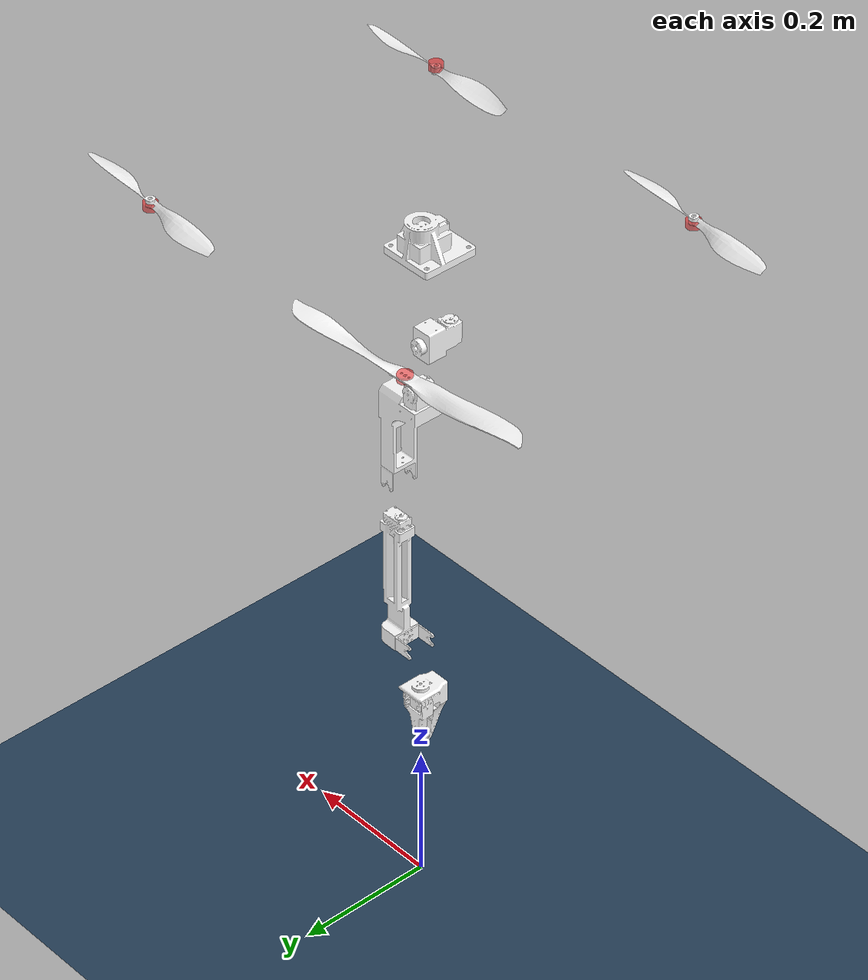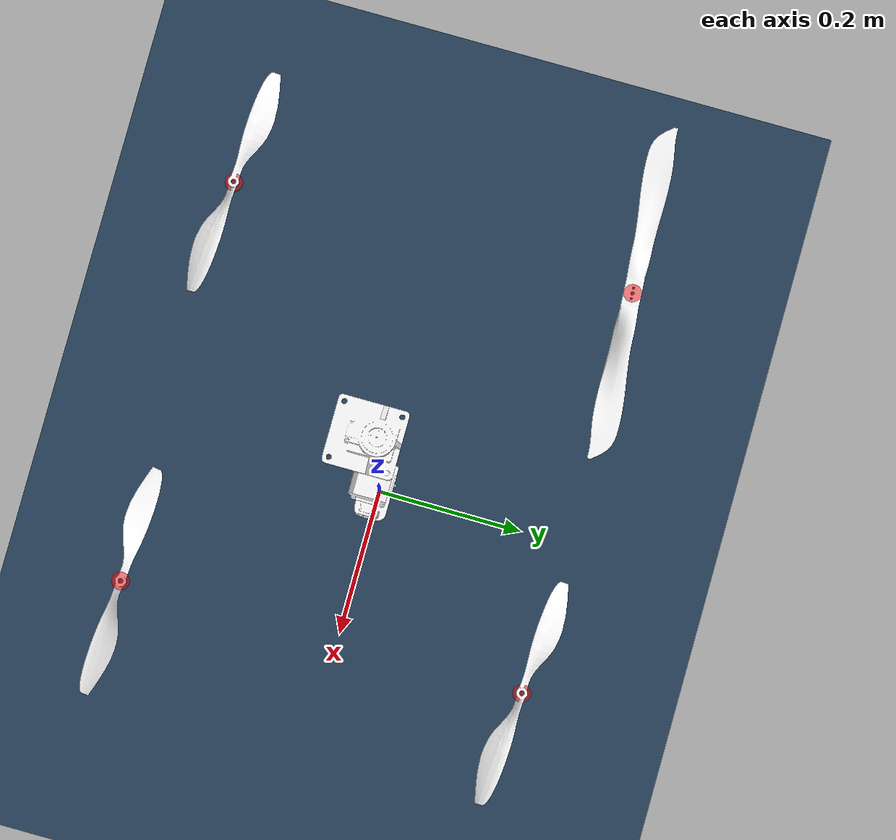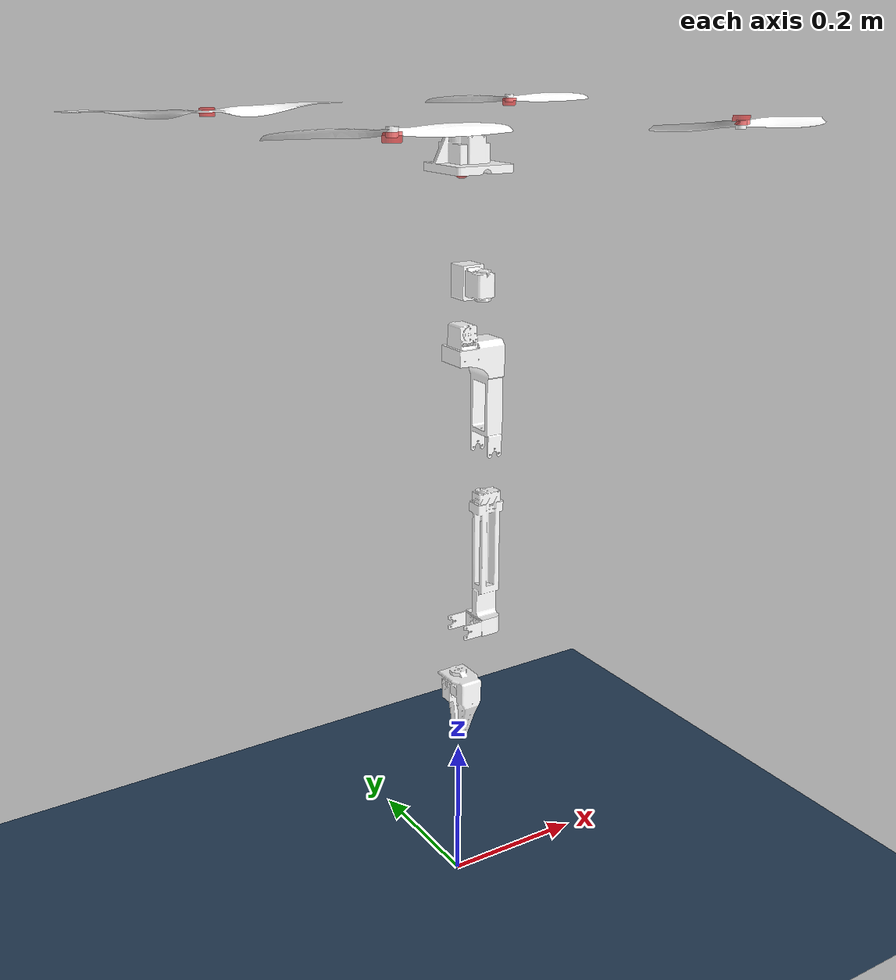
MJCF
<mujoco model="x650_arm_v2">
    <compiler angle="radian" meshdir="meshes/" />
    <option timestep="0.005" integrator="implicit" density="1.225" viscosity="1.8e-5"/>
    <size njmax="500" nconmax="100" />
    <asset>
        <texture name="grid" type="2d" builtin="checker" width="512" height="512" rgb1=".1 .2 .3" rgb2=".2 .3 .4"/>
        <material name="grid" texture="grid" texrepeat="1 1" texuniform="true" reflectance="0.2" specular="1.0" shininess="0.5"/>
        <mesh name="base_link" file="base_link.STL" />
        <mesh name="rotor_1" file="rotor_1.STL" />
        <mesh name="rotor_2" file="rotor_2.STL" />
        <mesh name="rotor_3" file="rotor_3.STL" />
        <mesh name="rotor_4" file="rotor_4.STL" />
        <mesh name="link_1" file="link_1.STL" />
        <mesh name="link_2" file="link_2.STL" />
        <mesh name="link_3" file="link_3.STL" />
        <mesh name="link_4" file="link_4.STL" />
        <mesh name="link_5" file="link_5.STL" />
    </asset>
    <worldbody>
        <geom name="floor" type="plane" pos="0 0 0" size="0 0 0.1" contype="1" conaffinity="1" material="grid"/>
        <light directional="true" diffuse=".8 .8 .8" specular=".5 .5 .5" pos="0 0 5" dir="0 0 -1" castshadow="true"/>
        <body name="base_link" pos="0 0 1">
            <inertial pos="0.012342 0.00046104 -0.055319" quat="0.458048 0.467075 -0.531593 0.537998" mass="0.88997" diaginertia="0.028069 0.0273973 0.0265968" />
            <joint name="floating_base_joint" type="free" />
            <geom type="mesh" contype="1" conaffinity="1" group="1" rgba="1 1 1 1" mesh="base_link" />
            <site name="base_link_origin" type="sphere" size="0.01" rgba="1 0 0 0.5" pos="0 0 0"/>
            <body name="rotor_1" pos="0.22991 -0.22991 0.0635">
                <inertial pos="0 0 0.001" quat="0 0.707107 0 0.707107" mass="0.0011466" diaginertia="1.3e-07 9e-08 4e-08" />
                <joint name="rotor_joint_1" pos="0 0 0" axis="0 0 1" />
                <geom type="mesh" contype="1" conaffinity="1" group="1" rgba="1 1 1 1" mesh="rotor_1" />
                <site name="rotor_joint_thrust1" type="cylinder" size="0.01 0.005" pos="0 0 0" rgba="1 0 0 0.5"/>
            </body>
            <body name="rotor_2" pos="0.22991 0.22991 0.0635">
                <inertial pos="0 0 0.001" quat="0 0.707107 0 0.707107" mass="0.0011466" diaginertia="1.3e-07 9e-08 4e-08" />
                <joint name="rotor_joint_2" pos="0 0 0" axis="0 0 1" />
                <geom type="mesh" contype="1" conaffinity="1" group="1" rgba="1 1 1 1" mesh="rotor_2" />
                <site name="rotor_joint_thrust2" type="cylinder" size="0.01 0.005" pos="0 0 0" rgba="1 0 0 0.5"/>
            </body>
            <body name="rotor_3" pos="-0.22991 0.22991 0.0635">
                <inertial pos="0 0 0.001" quat="0 0.707107 0 0.707107" mass="0.0011466" diaginertia="1.3e-07 9e-08 4e-08" />
                <joint name="rotor_joint_3" pos="0 0 0" axis="0 0 1" />
                <geom type="mesh" contype="1" conaffinity="1" group="1" rgba="1 1 1 1" mesh="rotor_3" />
                <site name="rotor_joint_thrust3" type="cylinder" size="0.01 0.005" pos="0 0 0" rgba="1 0 0 0.5"/>
            </body>
            <body name="rotor_4" pos="-0.22991 -0.22991 0.0635">
                <inertial pos="0 0 0.001" quat="0 0.707107 0 0.707107" mass="0.0011466" diaginertia="1.3e-07 9e-08 4e-08" />
                <joint name="rotor_joint_4" pos="0 0 0" axis="0 0 1" />
                <geom type="mesh" contype="1" conaffinity="1" group="1" rgba="1 1 1 1" mesh="rotor_4" />
                <site name="rotor_joint_thrust4" type="cylinder" size="0.01 0.005" pos="0 0 0" rgba="1 0 0 0.5"/>
            </body>
            <body name="link_1" pos="0 0.0005 -0.13211" quat="0.707105 0.707108 0 0">
                <inertial pos="0.023682 -0.16131 -0.00087342" quat="0.474639 0.574751 -0.416929 0.520143" mass="0.1468" diaginertia="0.00104483 0.00103987 4.76741e-05" />
                <joint name="joint_1" pos="0 0 0" axis="0 0 1" limited="true" range="-2.6485 2.6485" damping="0.62275" frictionloss="0.098067" />
                <geom type="mesh" contype="1" conaffinity="1" group="1" rgba="1 1 1 1" mesh="link_1" />
                <body name="link_2" pos="0.04098 -0.2314 -0.0005">
                    <inertial pos="-0.037783 -0.16226 -0.00087726" quat="0.704478 0.709118 -0.0273526 -0.0107146" mass="0.1467" diaginertia="0.0014554 0.00144957 3.72723e-05" />
                    <joint name="joint_2" pos="0 0 0" axis="0 0 1" limited="true" range="0 3.4907" damping="0.72763" frictionloss="0.068647" />
                    <geom type="mesh" contype="1" conaffinity="1" group="1" rgba="1 1 1 1" mesh="link_2" />
                    <body name="link_3" pos="-0.04098 -0.24861 -0.0005">
                        <inertial pos="0.0040244 -0.039487 -4.87e-06" quat="0.70391 0.70391 0.0671633 0.0671633" mass="0.0618" diaginertia="2.68849e-05 2.514e-05 1.30451e-05" />
                        <joint name="joint_3" pos="0 0 0" axis="0 0 1" limited="true" range="-2.6485 2.6485" damping="0.72763" frictionloss="0.068647" />
                        <geom type="mesh" contype="1" conaffinity="1" group="1" rgba="1 1 1 1" mesh="link_3" />
                        <body name="link_4" pos="0 -0.0639 0" quat="0.499998 0.5 -0.5 0.500002">
                            <inertial pos="0.012935 0.00072181 0.028883" quat="0.718596 0.117058 0.11021 0.676588" mass="0.022338" diaginertia="1.44602e-05 1.2297e-05 5.6728e-06" />
                            <joint name="joint_4" pos="0 0 0" axis="0 0 1" limited="true" range="-3.1416 3.1416" damping="0.13298" frictionloss="0.027851" />
                            <geom type="mesh" contype="1" conaffinity="1" group="1" rgba="1 1 1 1" mesh="link_4" />
                            <body name="link_5" pos="-0.0044 0 0.02243" quat="0.707105 -0.707108 0 0">
                                <inertial pos="0.0015718 -0.03228 -0.00038534" quat="0.718322 0.694561 0.0222174 0.0332439" mass="0.00926" diaginertia="4.4213e-06 3.8733e-06 9.55405e-07" />
                                <joint name="joint_5" pos="0 0 0" axis="0 0 1" limited="true" range="0 1.7628" damping="0.13298" frictionloss="0.027851" />
                                <geom type="mesh" contype="1" conaffinity="1" group="1" rgba="1 1 1 1" mesh="link_5" />
                            </body>
                        </body>
                    </body>
                </body>
            </body>
        </body>
    </worldbody>
    <actuator>
        <motor name="rotor_joint_1" joint="rotor_joint_1" />
        <motor name="rotor_joint_2" joint="rotor_joint_2" />
        <motor name="rotor_joint_3" joint="rotor_joint_3" />
        <motor name="rotor_joint_4" joint="rotor_joint_4" />
        <motor name="rotor_joint_thrust1" site="rotor_joint_thrust1" gear="0 0 1 0 0 -0.016" />
        <motor name="rotor_joint_thrust2" site="rotor_joint_thrust2" gear="0 0 1 0 0 0.016" />
        <motor name="rotor_joint_thrust3" site="rotor_joint_thrust3" gear="0 0 1 0 0 -0.016" />
        <motor name="rotor_joint_thrust4" site="rotor_joint_thrust4" gear="0 0 1 0 0 0.016" />
        <position name="joint_1" joint="joint_1" kp="200" dampratio="1" />
        <position name="joint_2" joint="joint_2" kp="120" dampratio="1" />
        <position name="joint_3" joint="joint_3" kp="120" dampratio="1" />
        <position name="joint_4" joint="joint_4" kp="60" dampratio="1" />
        <position name="joint_5" joint="joint_5" kp="60" dampratio="1" />
    </actuator>
    <sensor>
        <framepos name="framepos" objtype="site" objname="base_link_origin" />
        <framequat name="framequat" objtype="site" objname="base_link_origin" />
        <velocimeter name="velocimeter" site="base_link_origin" />
        <gyro name="gyro" site="base_link_origin" />
    </sensor>
</mujoco>
